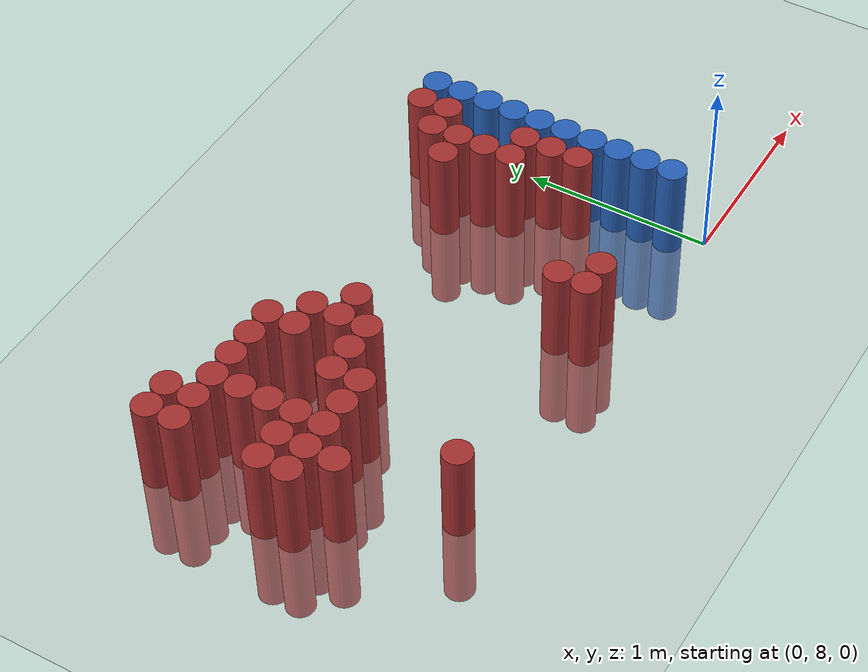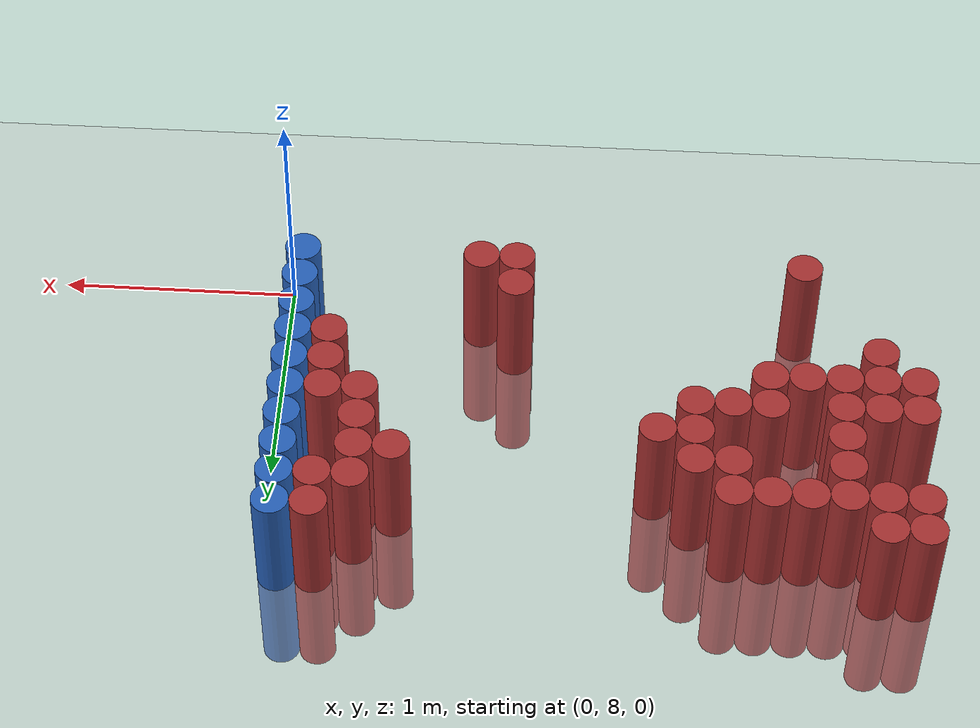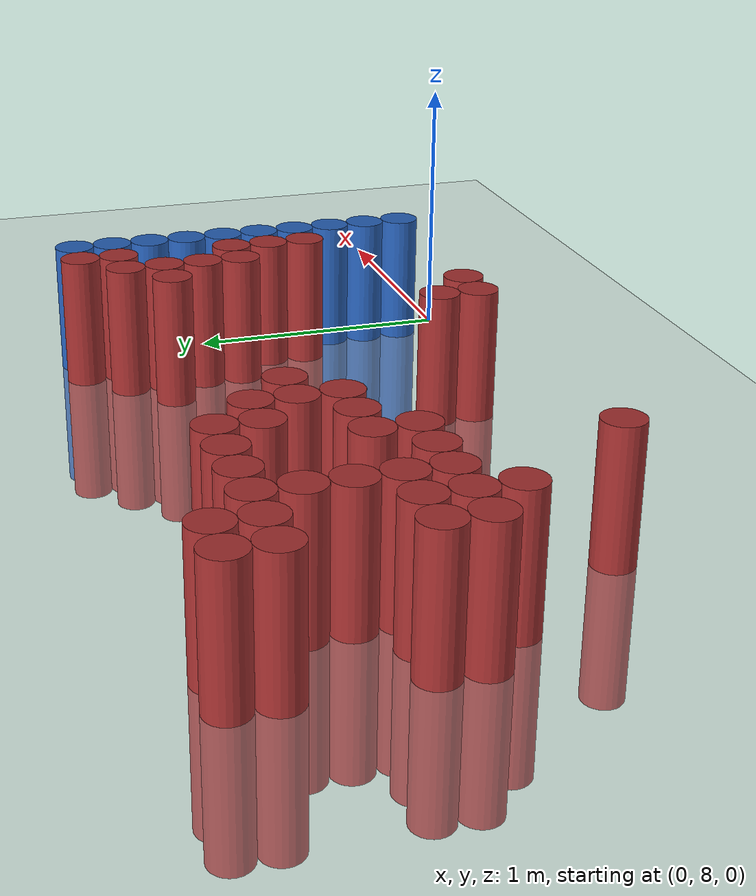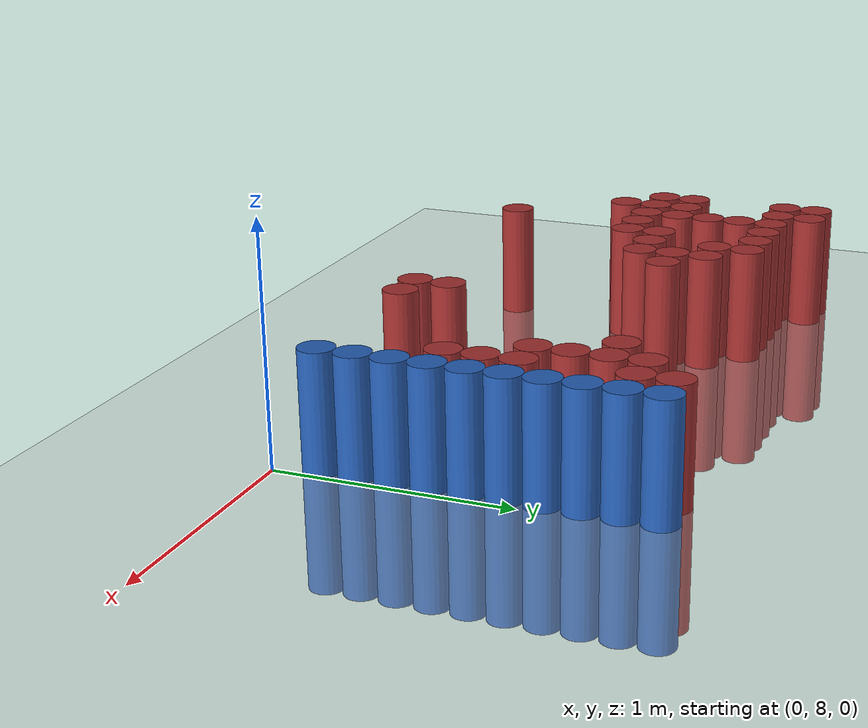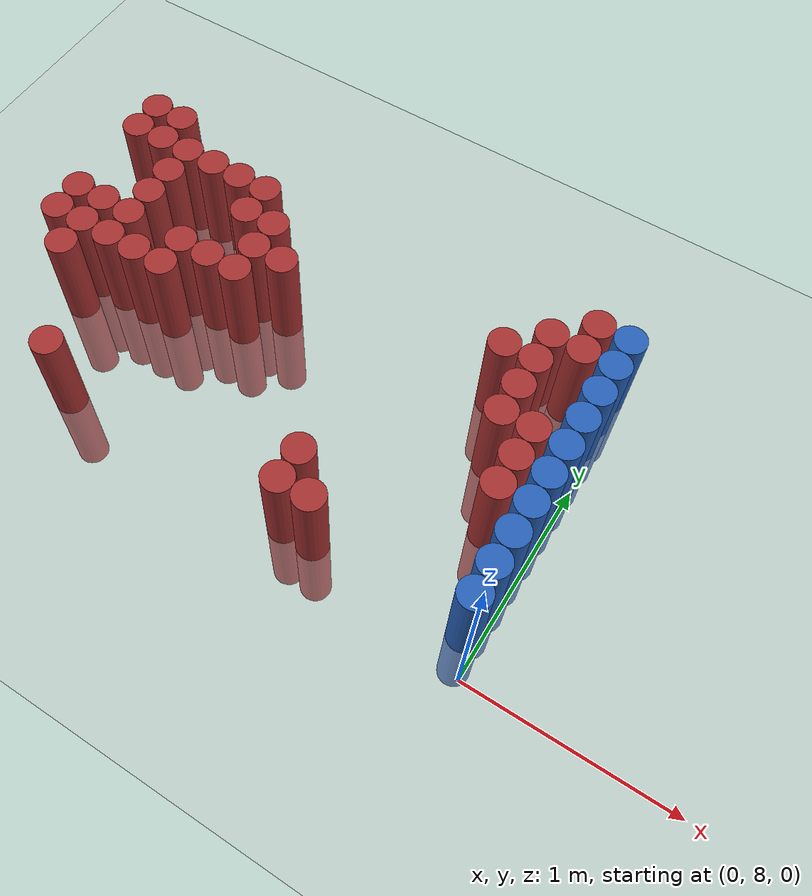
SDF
<sdf version="1.6">
 <world name="default">
  <model name="ground_plane">
   <static>1</static>
   <link name="link">
    <collision name="collision">
     <geometry><plane><normal>0 0 1</normal><size>100 100</size></plane></geometry>
     <surface><friction><ode><mu>100</mu><mu2>50</mu2></ode></friction></surface>
    </collision>
    <visual name="visual">
     <cast_shadows>0</cast_shadows>
     <geometry><plane><normal>0 0 1</normal><size>100 100</size></plane></geometry>
     <material>
      <script><uri>file://media/materials/scripts/gazebo.material</uri><name>Gazebo/Grey</name></script>
     </material>
    </visual>
   </link>
  </model>
  <model name="unit_cylinder_161">
   <static>1</static>
   <pose>-2.625000 8.775000 0.000000 0.000000 0.000000 0.000000</pose>
   <link name="link">
    <inertial>
     <mass>1</mass>
     <inertia><ixx>0.145833</ixx><ixy>0</ixy><ixz>0</ixz><iyy>0.145833</iyy><iyz>0</iyz><izz>0.125</izz></inertia>
    </inertial>
    <collision name="collision">
     <geometry><cylinder><radius>0.075000</radius><length>1</length></cylinder></geometry>
    </collision>
    <visual name="visual">
     <geometry><cylinder><radius>0.075000</radius><length>1</length></cylinder></geometry>
     <material>
      <ambient>0.648000 0.192000 0.192000 1</ambient>
      <diffuse>0.648000 0.192000 0.192000 1</diffuse>
     </material>
     <material>
      <script><name>Gazebo/Grey</name><uri>file://media/materials/scripts/gazebo.material</uri></script>
     </material>
    </visual>
   </link>
  </model>
  <model name="unit_cylinder_162">
   <static>1</static>
   <pose>-2.625000 8.925000 0.000000 0.000000 0.000000 0.000000</pose>
   <link name="link">
    <inertial>
     <mass>1</mass>
     <inertia><ixx>0.145833</ixx><ixy>0</ixy><ixz>0</ixz><iyy>0.145833</iyy><iyz>0</iyz><izz>0.125</izz></inertia>
    </inertial>
    <collision name="collision">
     <geometry><cylinder><radius>0.075000</radius><length>1</length></cylinder></geometry>
    </collision>
    <visual name="visual">
     <geometry><cylinder><radius>0.075000</radius><length>1</length></cylinder></geometry>
     <material>
      <ambient>0.648000 0.192000 0.192000 1</ambient>
      <diffuse>0.648000 0.192000 0.192000 1</diffuse>
     </material>
     <material>
      <script><name>Gazebo/Grey</name><uri>file://media/materials/scripts/gazebo.material</uri></script>
     </material>
    </visual>
   </link>
  </model>
  <model name="unit_cylinder_163">
   <static>1</static>
   <pose>-2.625000 9.375000 0.000000 0.000000 0.000000 0.000000</pose>
   <link name="link">
    <inertial>
     <mass>1</mass>
     <inertia><ixx>0.145833</ixx><ixy>0</ixy><ixz>0</ixz><iyy>0.145833</iyy><iyz>0</iyz><izz>0.125</izz></inertia>
    </inertial>
    <collision name="collision">
     <geometry><cylinder><radius>0.075000</radius><length>1</length></cylinder></geometry>
    </collision>
    <visual name="visual">
     <geometry><cylinder><radius>0.075000</radius><length>1</length></cylinder></geometry>
     <material>
      <ambient>0.648000 0.192000 0.192000 1</ambient>
      <diffuse>0.648000 0.192000 0.192000 1</diffuse>
     </material>
     <material>
      <script><name>Gazebo/Grey</name><uri>file://media/materials/scripts/gazebo.material</uri></script>
     </material>
    </visual>
   </link>
  </model>
  <model name="unit_cylinder_164">
   <static>1</static>
   <pose>-2.625000 9.525000 0.000000 0.000000 0.000000 0.000000</pose>
   <link name="link">
    <inertial>
     <mass>1</mass>
     <inertia><ixx>0.145833</ixx><ixy>0</ixy><ixz>0</ixz><iyy>0.145833</iyy><iyz>0</iyz><izz>0.125</izz></inertia>
    </inertial>
    <collision name="collision">
     <geometry><cylinder><radius>0.075000</radius><length>1</length></cylinder></geometry>
    </collision>
    <visual name="visual">
     <geometry><cylinder><radius>0.075000</radius><length>1</length></cylinder></geometry>
     <material>
      <ambient>0.648000 0.192000 0.192000 1</ambient>
      <diffuse>0.648000 0.192000 0.192000 1</diffuse>
     </material>
     <material>
      <script><name>Gazebo/Grey</name><uri>file://media/materials/scripts/gazebo.material</uri></script>
     </material>
    </visual>
   </link>
  </model>
  <model name="unit_cylinder_170">
   <static>1</static>
   <pose>-2.475000 8.625000 0.000000 0.000000 0.000000 0.000000</pose>
   <link name="link">
    <inertial>
     <mass>1</mass>
     <inertia><ixx>0.145833</ixx><ixy>0</ixy><ixz>0</ixz><iyy>0.145833</iyy><iyz>0</iyz><izz>0.125</izz></inertia>
    </inertial>
    <collision name="collision">
     <geometry><cylinder><radius>0.075000</radius><length>1</length></cylinder></geometry>
    </collision>
    <visual name="visual">
     <geometry><cylinder><radius>0.075000</radius><length>1</length></cylinder></geometry>
     <material>
      <ambient>0.648000 0.192000 0.192000 1</ambient>
      <diffuse>0.648000 0.192000 0.192000 1</diffuse>
     </material>
     <material>
      <script><name>Gazebo/Grey</name><uri>file://media/materials/scripts/gazebo.material</uri></script>
     </material>
    </visual>
   </link>
  </model>
  <model name="unit_cylinder_171">
   <static>1</static>
   <pose>-2.475000 8.775000 0.000000 0.000000 0.000000 0.000000</pose>
   <link name="link">
    <inertial>
     <mass>1</mass>
     <inertia><ixx>0.145833</ixx><ixy>0</ixy><ixz>0</ixz><iyy>0.145833</iyy><iyz>0</iyz><izz>0.125</izz></inertia>
    </inertial>
    <collision name="collision">
     <geometry><cylinder><radius>0.075000</radius><length>1</length></cylinder></geometry>
    </collision>
    <visual name="visual">
     <geometry><cylinder><radius>0.075000</radius><length>1</length></cylinder></geometry>
     <material>
      <ambient>0.648000 0.192000 0.192000 1</ambient>
      <diffuse>0.648000 0.192000 0.192000 1</diffuse>
     </material>
     <material>
      <script><name>Gazebo/Grey</name><uri>file://media/materials/scripts/gazebo.material</uri></script>
     </material>
    </visual>
   </link>
  </model>
  <model name="unit_cylinder_172">
   <static>1</static>
   <pose>-2.475000 8.925000 0.000000 0.000000 0.000000 0.000000</pose>
   <link name="link">
    <inertial>
     <mass>1</mass>
     <inertia><ixx>0.145833</ixx><ixy>0</ixy><ixz>0</ixz><iyy>0.145833</iyy><iyz>0</iyz><izz>0.125</izz></inertia>
    </inertial>
    <collision name="collision">
     <geometry><cylinder><radius>0.075000</radius><length>1</length></cylinder></geometry>
    </collision>
    <visual name="visual">
     <geometry><cylinder><radius>0.075000</radius><length>1</length></cylinder></geometry>
     <material>
      <ambient>0.648000 0.192000 0.192000 1</ambient>
      <diffuse>0.648000 0.192000 0.192000 1</diffuse>
     </material>
     <material>
      <script><name>Gazebo/Grey</name><uri>file://media/materials/scripts/gazebo.material</uri></script>
     </material>
    </visual>
   </link>
  </model>
  <model name="unit_cylinder_173">
   <static>1</static>
   <pose>-2.475000 9.375000 0.000000 0.000000 0.000000 0.000000</pose>
   <link name="link">
    <inertial>
     <mass>1</mass>
     <inertia><ixx>0.145833</ixx><ixy>0</ixy><ixz>0</ixz><iyy>0.145833</iyy><iyz>0</iyz><izz>0.125</izz></inertia>
    </inertial>
    <collision name="collision">
     <geometry><cylinder><radius>0.075000</radius><length>1</length></cylinder></geometry>
    </collision>
    <visual name="visual">
     <geometry><cylinder><radius>0.075000</radius><length>1</length></cylinder></geometry>
     <material>
      <ambient>0.648000 0.192000 0.192000 1</ambient>
      <diffuse>0.648000 0.192000 0.192000 1</diffuse>
     </material>
     <material>
      <script><name>Gazebo/Grey</name><uri>file://media/materials/scripts/gazebo.material</uri></script>
     </material>
    </visual>
   </link>
  </model>
  <model name="unit_cylinder_174">
   <static>1</static>
   <pose>-2.475000 9.525000 0.000000 0.000000 0.000000 0.000000</pose>
   <link name="link">
    <inertial>
     <mass>1</mass>
     <inertia><ixx>0.145833</ixx><ixy>0</ixy><ixz>0</ixz><iyy>0.145833</iyy><iyz>0</iyz><izz>0.125</izz></inertia>
    </inertial>
    <collision name="collision">
     <geometry><cylinder><radius>0.075000</radius><length>1</length></cylinder></geometry>
    </collision>
    <visual name="visual">
     <geometry><cylinder><radius>0.075000</radius><length>1</length></cylinder></geometry>
     <material>
      <ambient>0.648000 0.192000 0.192000 1</ambient>
      <diffuse>0.648000 0.192000 0.192000 1</diffuse>
     </material>
     <material>
      <script><name>Gazebo/Grey</name><uri>file://media/materials/scripts/gazebo.material</uri></script>
     </material>
    </visual>
   </link>
  </model>
  <model name="unit_cylinder_185">
   <static>1</static>
   <pose>-2.325000 8.775000 0.000000 0.000000 0.000000 0.000000</pose>
   <link name="link">
    <inertial>
     <mass>1</mass>
     <inertia><ixx>0.145833</ixx><ixy>0</ixy><ixz>0</ixz><iyy>0.145833</iyy><iyz>0</iyz><izz>0.125</izz></inertia>
    </inertial>
    <collision name="collision">
     <geometry><cylinder><radius>0.075000</radius><length>1</length></cylinder></geometry>
    </collision>
    <visual name="visual">
     <geometry><cylinder><radius>0.075000</radius><length>1</length></cylinder></geometry>
     <material>
      <ambient>0.648000 0.192000 0.192000 1</ambient>
      <diffuse>0.648000 0.192000 0.192000 1</diffuse>
     </material>
     <material>
      <script><name>Gazebo/Grey</name><uri>file://media/materials/scripts/gazebo.material</uri></script>
     </material>
    </visual>
   </link>
  </model>
  <model name="unit_cylinder_186">
   <static>1</static>
   <pose>-2.325000 8.925000 0.000000 0.000000 0.000000 0.000000</pose>
   <link name="link">
    <inertial>
     <mass>1</mass>
     <inertia><ixx>0.145833</ixx><ixy>0</ixy><ixz>0</ixz><iyy>0.145833</iyy><iyz>0</iyz><izz>0.125</izz></inertia>
    </inertial>
    <collision name="collision">
     <geometry><cylinder><radius>0.075000</radius><length>1</length></cylinder></geometry>
    </collision>
    <visual name="visual">
     <geometry><cylinder><radius>0.075000</radius><length>1</length></cylinder></geometry>
     <material>
      <ambient>0.648000 0.192000 0.192000 1</ambient>
      <diffuse>0.648000 0.192000 0.192000 1</diffuse>
     </material>
     <material>
      <script><name>Gazebo/Grey</name><uri>file://media/materials/scripts/gazebo.material</uri></script>
     </material>
    </visual>
   </link>
  </model>
  <model name="unit_cylinder_187">
   <static>1</static>
   <pose>-2.325000 9.075000 0.000000 0.000000 0.000000 0.000000</pose>
   <link name="link">
    <inertial>
     <mass>1</mass>
     <inertia><ixx>0.145833</ixx><ixy>0</ixy><ixz>0</ixz><iyy>0.145833</iyy><iyz>0</iyz><izz>0.125</izz></inertia>
    </inertial>
    <collision name="collision">
     <geometry><cylinder><radius>0.075000</radius><length>1</length></cylinder></geometry>
    </collision>
    <visual name="visual">
     <geometry><cylinder><radius>0.075000</radius><length>1</length></cylinder></geometry>
     <material>
      <ambient>0.648000 0.192000 0.192000 1</ambient>
      <diffuse>0.648000 0.192000 0.192000 1</diffuse>
     </material>
     <material>
      <script><name>Gazebo/Grey</name><uri>file://media/materials/scripts/gazebo.material</uri></script>
     </material>
    </visual>
   </link>
  </model>
  <model name="unit_cylinder_188">
   <static>1</static>
   <pose>-2.325000 9.225000 0.000000 0.000000 0.000000 0.000000</pose>
   <link name="link">
    <inertial>
     <mass>1</mass>
     <inertia><ixx>0.145833</ixx><ixy>0</ixy><ixz>0</ixz><iyy>0.145833</iyy><iyz>0</iyz><izz>0.125</izz></inertia>
    </inertial>
    <collision name="collision">
     <geometry><cylinder><radius>0.075000</radius><length>1</length></cylinder></geometry>
    </collision>
    <visual name="visual">
     <geometry><cylinder><radius>0.075000</radius><length>1</length></cylinder></geometry>
     <material>
      <ambient>0.648000 0.192000 0.192000 1</ambient>
      <diffuse>0.648000 0.192000 0.192000 1</diffuse>
     </material>
     <material>
      <script><name>Gazebo/Grey</name><uri>file://media/materials/scripts/gazebo.material</uri></script>
     </material>
    </visual>
   </link>
  </model>
  <model name="unit_cylinder_189">
   <static>1</static>
   <pose>-2.325000 9.375000 0.000000 0.000000 0.000000 0.000000</pose>
   <link name="link">
    <inertial>
     <mass>1</mass>
     <inertia><ixx>0.145833</ixx><ixy>0</ixy><ixz>0</ixz><iyy>0.145833</iyy><iyz>0</iyz><izz>0.125</izz></inertia>
    </inertial>
    <collision name="collision">
     <geometry><cylinder><radius>0.075000</radius><length>1</length></cylinder></geometry>
    </collision>
    <visual name="visual">
     <geometry><cylinder><radius>0.075000</radius><length>1</length></cylinder></geometry>
     <material>
      <ambient>0.648000 0.192000 0.192000 1</ambient>
      <diffuse>0.648000 0.192000 0.192000 1</diffuse>
     </material>
     <material>
      <script><name>Gazebo/Grey</name><uri>file://media/materials/scripts/gazebo.material</uri></script>
     </material>
    </visual>
   </link>
  </model>
  <model name="unit_cylinder_200">
   <static>1</static>
   <pose>-2.175000 8.175000 0.000000 0.000000 0.000000 0.000000</pose>
   <link name="link">
    <inertial>
     <mass>1</mass>
     <inertia><ixx>0.145833</ixx><ixy>0</ixy><ixz>0</ixz><iyy>0.145833</iyy><iyz>0</iyz><izz>0.125</izz></inertia>
    </inertial>
    <collision name="collision">
     <geometry><cylinder><radius>0.075000</radius><length>1</length></cylinder></geometry>
    </collision>
    <visual name="visual">
     <geometry><cylinder><radius>0.075000</radius><length>1</length></cylinder></geometry>
     <material>
      <ambient>0.648000 0.192000 0.192000 1</ambient>
      <diffuse>0.648000 0.192000 0.192000 1</diffuse>
     </material>
     <material>
      <script><name>Gazebo/Grey</name><uri>file://media/materials/scripts/gazebo.material</uri></script>
     </material>
    </visual>
   </link>
  </model>
  <model name="unit_cylinder_201">
   <static>1</static>
   <pose>-2.175000 8.775000 0.000000 0.000000 0.000000 0.000000</pose>
   <link name="link">
    <inertial>
     <mass>1</mass>
     <inertia><ixx>0.145833</ixx><ixy>0</ixy><ixz>0</ixz><iyy>0.145833</iyy><iyz>0</iyz><izz>0.125</izz></inertia>
    </inertial>
    <collision name="collision">
     <geometry><cylinder><radius>0.075000</radius><length>1</length></cylinder></geometry>
    </collision>
    <visual name="visual">
     <geometry><cylinder><radius>0.075000</radius><length>1</length></cylinder></geometry>
     <material>
      <ambient>0.648000 0.192000 0.192000 1</ambient>
      <diffuse>0.648000 0.192000 0.192000 1</diffuse>
     </material>
     <material>
      <script><name>Gazebo/Grey</name><uri>file://media/materials/scripts/gazebo.material</uri></script>
     </material>
    </visual>
   </link>
  </model>
  <model name="unit_cylinder_202">
   <static>1</static>
   <pose>-2.175000 9.375000 0.000000 0.000000 0.000000 0.000000</pose>
   <link name="link">
    <inertial>
     <mass>1</mass>
     <inertia><ixx>0.145833</ixx><ixy>0</ixy><ixz>0</ixz><iyy>0.145833</iyy><iyz>0</iyz><izz>0.125</izz></inertia>
    </inertial>
    <collision name="collision">
     <geometry><cylinder><radius>0.075000</radius><length>1</length></cylinder></geometry>
    </collision>
    <visual name="visual">
     <geometry><cylinder><radius>0.075000</radius><length>1</length></cylinder></geometry>
     <material>
      <ambient>0.648000 0.192000 0.192000 1</ambient>
      <diffuse>0.648000 0.192000 0.192000 1</diffuse>
     </material>
     <material>
      <script><name>Gazebo/Grey</name><uri>file://media/materials/scripts/gazebo.material</uri></script>
     </material>
    </visual>
   </link>
  </model>
  <model name="unit_cylinder_211">
   <static>1</static>
   <pose>-2.025000 8.775000 0.000000 0.000000 0.000000 0.000000</pose>
   <link name="link">
    <inertial>
     <mass>1</mass>
     <inertia><ixx>0.145833</ixx><ixy>0</ixy><ixz>0</ixz><iyy>0.145833</iyy><iyz>0</iyz><izz>0.125</izz></inertia>
    </inertial>
    <collision name="collision">
     <geometry><cylinder><radius>0.075000</radius><length>1</length></cylinder></geometry>
    </collision>
    <visual name="visual">
     <geometry><cylinder><radius>0.075000</radius><length>1</length></cylinder></geometry>
     <material>
      <ambient>0.648000 0.192000 0.192000 1</ambient>
      <diffuse>0.648000 0.192000 0.192000 1</diffuse>
     </material>
     <material>
      <script><name>Gazebo/Grey</name><uri>file://media/materials/scripts/gazebo.material</uri></script>
     </material>
    </visual>
   </link>
  </model>
  <model name="unit_cylinder_212">
   <static>1</static>
   <pose>-2.025000 8.925000 0.000000 0.000000 0.000000 0.000000</pose>
   <link name="link">
    <inertial>
     <mass>1</mass>
     <inertia><ixx>0.145833</ixx><ixy>0</ixy><ixz>0</ixz><iyy>0.145833</iyy><iyz>0</iyz><izz>0.125</izz></inertia>
    </inertial>
    <collision name="collision">
     <geometry><cylinder><radius>0.075000</radius><length>1</length></cylinder></geometry>
    </collision>
    <visual name="visual">
     <geometry><cylinder><radius>0.075000</radius><length>1</length></cylinder></geometry>
     <material>
      <ambient>0.648000 0.192000 0.192000 1</ambient>
      <diffuse>0.648000 0.192000 0.192000 1</diffuse>
     </material>
     <material>
      <script><name>Gazebo/Grey</name><uri>file://media/materials/scripts/gazebo.material</uri></script>
     </material>
    </visual>
   </link>
  </model>
  <model name="unit_cylinder_213">
   <static>1</static>
   <pose>-2.025000 9.375000 0.000000 0.000000 0.000000 0.000000</pose>
   <link name="link">
    <inertial>
     <mass>1</mass>
     <inertia><ixx>0.145833</ixx><ixy>0</ixy><ixz>0</ixz><iyy>0.145833</iyy><iyz>0</iyz><izz>0.125</izz></inertia>
    </inertial>
    <collision name="collision">
     <geometry><cylinder><radius>0.075000</radius><length>1</length></cylinder></geometry>
    </collision>
    <visual name="visual">
     <geometry><cylinder><radius>0.075000</radius><length>1</length></cylinder></geometry>
     <material>
      <ambient>0.648000 0.192000 0.192000 1</ambient>
      <diffuse>0.648000 0.192000 0.192000 1</diffuse>
     </material>
     <material>
      <script><name>Gazebo/Grey</name><uri>file://media/materials/scripts/gazebo.material</uri></script>
     </material>
    </visual>
   </link>
  </model>
  <model name="unit_cylinder_221">
   <static>1</static>
   <pose>-1.875000 8.925000 0.000000 0.000000 0.000000 0.000000</pose>
   <link name="link">
    <inertial>
     <mass>1</mass>
     <inertia><ixx>0.145833</ixx><ixy>0</ixy><ixz>0</ixz><iyy>0.145833</iyy><iyz>0</iyz><izz>0.125</izz></inertia>
    </inertial>
    <collision name="collision">
     <geometry><cylinder><radius>0.075000</radius><length>1</length></cylinder></geometry>
    </collision>
    <visual name="visual">
     <geometry><cylinder><radius>0.075000</radius><length>1</length></cylinder></geometry>
     <material>
      <ambient>0.648000 0.192000 0.192000 1</ambient>
      <diffuse>0.648000 0.192000 0.192000 1</diffuse>
     </material>
     <material>
      <script><name>Gazebo/Grey</name><uri>file://media/materials/scripts/gazebo.material</uri></script>
     </material>
    </visual>
   </link>
  </model>
  <model name="unit_cylinder_222">
   <static>1</static>
   <pose>-1.875000 9.225000 0.000000 0.000000 0.000000 0.000000</pose>
   <link name="link">
    <inertial>
     <mass>1</mass>
     <inertia><ixx>0.145833</ixx><ixy>0</ixy><ixz>0</ixz><iyy>0.145833</iyy><iyz>0</iyz><izz>0.125</izz></inertia>
    </inertial>
    <collision name="collision">
     <geometry><cylinder><radius>0.075000</radius><length>1</length></cylinder></geometry>
    </collision>
    <visual name="visual">
     <geometry><cylinder><radius>0.075000</radius><length>1</length></cylinder></geometry>
     <material>
      <ambient>0.648000 0.192000 0.192000 1</ambient>
      <diffuse>0.648000 0.192000 0.192000 1</diffuse>
     </material>
     <material>
      <script><name>Gazebo/Grey</name><uri>file://media/materials/scripts/gazebo.material</uri></script>
     </material>
    </visual>
   </link>
  </model>
  <model name="unit_cylinder_223">
   <static>1</static>
   <pose>-1.875000 9.375000 0.000000 0.000000 0.000000 0.000000</pose>
   <link name="link">
    <inertial>
     <mass>1</mass>
     <inertia><ixx>0.145833</ixx><ixy>0</ixy><ixz>0</ixz><iyy>0.145833</iyy><iyz>0</iyz><izz>0.125</izz></inertia>
    </inertial>
    <collision name="collision">
     <geometry><cylinder><radius>0.075000</radius><length>1</length></cylinder></geometry>
    </collision>
    <visual name="visual">
     <geometry><cylinder><radius>0.075000</radius><length>1</length></cylinder></geometry>
     <material>
      <ambient>0.648000 0.192000 0.192000 1</ambient>
      <diffuse>0.648000 0.192000 0.192000 1</diffuse>
     </material>
     <material>
      <script><name>Gazebo/Grey</name><uri>file://media/materials/scripts/gazebo.material</uri></script>
     </material>
    </visual>
   </link>
  </model>
  <model name="unit_cylinder_226">
   <static>1</static>
   <pose>-1.725000 8.925000 0.000000 0.000000 0.000000 0.000000</pose>
   <link name="link">
    <inertial>
     <mass>1</mass>
     <inertia><ixx>0.145833</ixx><ixy>0</ixy><ixz>0</ixz><iyy>0.145833</iyy><iyz>0</iyz><izz>0.125</izz></inertia>
    </inertial>
    <collision name="collision">
     <geometry><cylinder><radius>0.075000</radius><length>1</length></cylinder></geometry>
    </collision>
    <visual name="visual">
     <geometry><cylinder><radius>0.075000</radius><length>1</length></cylinder></geometry>
     <material>
      <ambient>0.648000 0.192000 0.192000 1</ambient>
      <diffuse>0.648000 0.192000 0.192000 1</diffuse>
     </material>
     <material>
      <script><name>Gazebo/Grey</name><uri>file://media/materials/scripts/gazebo.material</uri></script>
     </material>
    </visual>
   </link>
  </model>
  <model name="unit_cylinder_227">
   <static>1</static>
   <pose>-1.725000 9.075000 0.000000 0.000000 0.000000 0.000000</pose>
   <link name="link">
    <inertial>
     <mass>1</mass>
     <inertia><ixx>0.145833</ixx><ixy>0</ixy><ixz>0</ixz><iyy>0.145833</iyy><iyz>0</iyz><izz>0.125</izz></inertia>
    </inertial>
    <collision name="collision">
     <geometry><cylinder><radius>0.075000</radius><length>1</length></cylinder></geometry>
    </collision>
    <visual name="visual">
     <geometry><cylinder><radius>0.075000</radius><length>1</length></cylinder></geometry>
     <material>
      <ambient>0.648000 0.192000 0.192000 1</ambient>
      <diffuse>0.648000 0.192000 0.192000 1</diffuse>
     </material>
     <material>
      <script><name>Gazebo/Grey</name><uri>file://media/materials/scripts/gazebo.material</uri></script>
     </material>
    </visual>
   </link>
  </model>
  <model name="unit_cylinder_228">
   <static>1</static>
   <pose>-1.725000 9.225000 0.000000 0.000000 0.000000 0.000000</pose>
   <link name="link">
    <inertial>
     <mass>1</mass>
     <inertia><ixx>0.145833</ixx><ixy>0</ixy><ixz>0</ixz><iyy>0.145833</iyy><iyz>0</iyz><izz>0.125</izz></inertia>
    </inertial>
    <collision name="collision">
     <geometry><cylinder><radius>0.075000</radius><length>1</length></cylinder></geometry>
    </collision>
    <visual name="visual">
     <geometry><cylinder><radius>0.075000</radius><length>1</length></cylinder></geometry>
     <material>
      <ambient>0.648000 0.192000 0.192000 1</ambient>
      <diffuse>0.648000 0.192000 0.192000 1</diffuse>
     </material>
     <material>
      <script><name>Gazebo/Grey</name><uri>file://media/materials/scripts/gazebo.material</uri></script>
     </material>
    </visual>
   </link>
  </model>
  <model name="unit_cylinder_230">
   <static>1</static>
   <pose>-1.575000 9.075000 0.000000 0.000000 0.000000 0.000000</pose>
   <link name="link">
    <inertial>
     <mass>1</mass>
     <inertia><ixx>0.145833</ixx><ixy>0</ixy><ixz>0</ixz><iyy>0.145833</iyy><iyz>0</iyz><izz>0.125</izz></inertia>
    </inertial>
    <collision name="collision">
     <geometry><cylinder><radius>0.075000</radius><length>1</length></cylinder></geometry>
    </collision>
    <visual name="visual">
     <geometry><cylinder><radius>0.075000</radius><length>1</length></cylinder></geometry>
     <material>
      <ambient>0.648000 0.192000 0.192000 1</ambient>
      <diffuse>0.648000 0.192000 0.192000 1</diffuse>
     </material>
     <material>
      <script><name>Gazebo/Grey</name><uri>file://media/materials/scripts/gazebo.material</uri></script>
     </material>
    </visual>
   </link>
  </model>
  <model name="unit_cylinder_243">
   <static>1</static>
   <pose>-0.975000 8.175000 0.000000 0.000000 0.000000 0.000000</pose>
   <link name="link">
    <inertial>
     <mass>1</mass>
     <inertia><ixx>0.145833</ixx><ixy>0</ixy><ixz>0</ixz><iyy>0.145833</iyy><iyz>0</iyz><izz>0.125</izz></inertia>
    </inertial>
    <collision name="collision">
     <geometry><cylinder><radius>0.075000</radius><length>1</length></cylinder></geometry>
    </collision>
    <visual name="visual">
     <geometry><cylinder><radius>0.075000</radius><length>1</length></cylinder></geometry>
     <material>
      <ambient>0.648000 0.192000 0.192000 1</ambient>
      <diffuse>0.648000 0.192000 0.192000 1</diffuse>
     </material>
     <material>
      <script><name>Gazebo/Grey</name><uri>file://media/materials/scripts/gazebo.material</uri></script>
     </material>
    </visual>
   </link>
  </model>
  <model name="unit_cylinder_244">
   <static>1</static>
   <pose>-0.975000 8.325000 0.000000 0.000000 0.000000 0.000000</pose>
   <link name="link">
    <inertial>
     <mass>1</mass>
     <inertia><ixx>0.145833</ixx><ixy>0</ixy><ixz>0</ixz><iyy>0.145833</iyy><iyz>0</iyz><izz>0.125</izz></inertia>
    </inertial>
    <collision name="collision">
     <geometry><cylinder><radius>0.075000</radius><length>1</length></cylinder></geometry>
    </collision>
    <visual name="visual">
     <geometry><cylinder><radius>0.075000</radius><length>1</length></cylinder></geometry>
     <material>
      <ambient>0.648000 0.192000 0.192000 1</ambient>
      <diffuse>0.648000 0.192000 0.192000 1</diffuse>
     </material>
     <material>
      <script><name>Gazebo/Grey</name><uri>file://media/materials/scripts/gazebo.material</uri></script>
     </material>
    </visual>
   </link>
  </model>
  <model name="unit_cylinder_246">
   <static>1</static>
   <pose>-0.825000 8.175000 0.000000 0.000000 0.000000 0.000000</pose>
   <link name="link">
    <inertial>
     <mass>1</mass>
     <inertia><ixx>0.145833</ixx><ixy>0</ixy><ixz>0</ixz><iyy>0.145833</iyy><iyz>0</iyz><izz>0.125</izz></inertia>
    </inertial>
    <collision name="collision">
     <geometry><cylinder><radius>0.075000</radius><length>1</length></cylinder></geometry>
    </collision>
    <visual name="visual">
     <geometry><cylinder><radius>0.075000</radius><length>1</length></cylinder></geometry>
     <material>
      <ambient>0.648000 0.192000 0.192000 1</ambient>
      <diffuse>0.648000 0.192000 0.192000 1</diffuse>
     </material>
     <material>
      <script><name>Gazebo/Grey</name><uri>file://media/materials/scripts/gazebo.material</uri></script>
     </material>
    </visual>
   </link>
  </model>
  <model name="unit_cylinder_249">
   <static>1</static>
   <pose>-0.525000 9.225000 0.000000 0.000000 0.000000 0.000000</pose>
   <link name="link">
    <inertial>
     <mass>1</mass>
     <inertia><ixx>0.145833</ixx><ixy>0</ixy><ixz>0</ixz><iyy>0.145833</iyy><iyz>0</iyz><izz>0.125</izz></inertia>
    </inertial>
    <collision name="collision">
     <geometry><cylinder><radius>0.075000</radius><length>1</length></cylinder></geometry>
    </collision>
    <visual name="visual">
     <geometry><cylinder><radius>0.075000</radius><length>1</length></cylinder></geometry>
     <material>
      <ambient>0.648000 0.192000 0.192000 1</ambient>
      <diffuse>0.648000 0.192000 0.192000 1</diffuse>
     </material>
     <material>
      <script><name>Gazebo/Grey</name><uri>file://media/materials/scripts/gazebo.material</uri></script>
     </material>
    </visual>
   </link>
  </model>
  <model name="unit_cylinder_252">
   <static>1</static>
   <pose>-0.375000 8.925000 0.000000 0.000000 0.000000 0.000000</pose>
   <link name="link">
    <inertial>
     <mass>1</mass>
     <inertia><ixx>0.145833</ixx><ixy>0</ixy><ixz>0</ixz><iyy>0.145833</iyy><iyz>0</iyz><izz>0.125</izz></inertia>
    </inertial>
    <collision name="collision">
     <geometry><cylinder><radius>0.075000</radius><length>1</length></cylinder></geometry>
    </collision>
    <visual name="visual">
     <geometry><cylinder><radius>0.075000</radius><length>1</length></cylinder></geometry>
     <material>
      <ambient>0.648000 0.192000 0.192000 1</ambient>
      <diffuse>0.648000 0.192000 0.192000 1</diffuse>
     </material>
     <material>
      <script><name>Gazebo/Grey</name><uri>file://media/materials/scripts/gazebo.material</uri></script>
     </material>
    </visual>
   </link>
  </model>
  <model name="unit_cylinder_253">
   <static>1</static>
   <pose>-0.375000 9.075000 0.000000 0.000000 0.000000 0.000000</pose>
   <link name="link">
    <inertial>
     <mass>1</mass>
     <inertia><ixx>0.145833</ixx><ixy>0</ixy><ixz>0</ixz><iyy>0.145833</iyy><iyz>0</iyz><izz>0.125</izz></inertia>
    </inertial>
    <collision name="collision">
     <geometry><cylinder><radius>0.075000</radius><length>1</length></cylinder></geometry>
    </collision>
    <visual name="visual">
     <geometry><cylinder><radius>0.075000</radius><length>1</length></cylinder></geometry>
     <material>
      <ambient>0.648000 0.192000 0.192000 1</ambient>
      <diffuse>0.648000 0.192000 0.192000 1</diffuse>
     </material>
     <material>
      <script><name>Gazebo/Grey</name><uri>file://media/materials/scripts/gazebo.material</uri></script>
     </material>
    </visual>
   </link>
  </model>
  <model name="unit_cylinder_254">
   <static>1</static>
   <pose>-0.375000 9.225000 0.000000 0.000000 0.000000 0.000000</pose>
   <link name="link">
    <inertial>
     <mass>1</mass>
     <inertia><ixx>0.145833</ixx><ixy>0</ixy><ixz>0</ixz><iyy>0.145833</iyy><iyz>0</iyz><izz>0.125</izz></inertia>
    </inertial>
    <collision name="collision">
     <geometry><cylinder><radius>0.075000</radius><length>1</length></cylinder></geometry>
    </collision>
    <visual name="visual">
     <geometry><cylinder><radius>0.075000</radius><length>1</length></cylinder></geometry>
     <material>
      <ambient>0.648000 0.192000 0.192000 1</ambient>
      <diffuse>0.648000 0.192000 0.192000 1</diffuse>
     </material>
     <material>
      <script><name>Gazebo/Grey</name><uri>file://media/materials/scripts/gazebo.material</uri></script>
     </material>
    </visual>
   </link>
  </model>
  <model name="unit_cylinder_255">
   <static>1</static>
   <pose>-0.375000 9.375000 0.000000 0.000000 0.000000 0.000000</pose>
   <link name="link">
    <inertial>
     <mass>1</mass>
     <inertia><ixx>0.145833</ixx><ixy>0</ixy><ixz>0</ixz><iyy>0.145833</iyy><iyz>0</iyz><izz>0.125</izz></inertia>
    </inertial>
    <collision name="collision">
     <geometry><cylinder><radius>0.075000</radius><length>1</length></cylinder></geometry>
    </collision>
    <visual name="visual">
     <geometry><cylinder><radius>0.075000</radius><length>1</length></cylinder></geometry>
     <material>
      <ambient>0.648000 0.192000 0.192000 1</ambient>
      <diffuse>0.648000 0.192000 0.192000 1</diffuse>
     </material>
     <material>
      <script><name>Gazebo/Grey</name><uri>file://media/materials/scripts/gazebo.material</uri></script>
     </material>
    </visual>
   </link>
  </model>
  <model name="unit_cylinder_266">
   <static>1</static>
   <pose>-0.225000 8.625000 0.000000 0.000000 0.000000 0.000000</pose>
   <link name="link">
    <inertial>
     <mass>1</mass>
     <inertia><ixx>0.145833</ixx><ixy>0</ixy><ixz>0</ixz><iyy>0.145833</iyy><iyz>0</iyz><izz>0.125</izz></inertia>
    </inertial>
    <collision name="collision">
     <geometry><cylinder><radius>0.075000</radius><length>1</length></cylinder></geometry>
    </collision>
    <visual name="visual">
     <geometry><cylinder><radius>0.075000</radius><length>1</length></cylinder></geometry>
     <material>
      <ambient>0.648000 0.192000 0.192000 1</ambient>
      <diffuse>0.648000 0.192000 0.192000 1</diffuse>
     </material>
     <material>
      <script><name>Gazebo/Grey</name><uri>file://media/materials/scripts/gazebo.material</uri></script>
     </material>
    </visual>
   </link>
  </model>
  <model name="unit_cylinder_267">
   <static>1</static>
   <pose>-0.225000 8.775000 0.000000 0.000000 0.000000 0.000000</pose>
   <link name="link">
    <inertial>
     <mass>1</mass>
     <inertia><ixx>0.145833</ixx><ixy>0</ixy><ixz>0</ixz><iyy>0.145833</iyy><iyz>0</iyz><izz>0.125</izz></inertia>
    </inertial>
    <collision name="collision">
     <geometry><cylinder><radius>0.075000</radius><length>1</length></cylinder></geometry>
    </collision>
    <visual name="visual">
     <geometry><cylinder><radius>0.075000</radius><length>1</length></cylinder></geometry>
     <material>
      <ambient>0.648000 0.192000 0.192000 1</ambient>
      <diffuse>0.648000 0.192000 0.192000 1</diffuse>
     </material>
     <material>
      <script><name>Gazebo/Grey</name><uri>file://media/materials/scripts/gazebo.material</uri></script>
     </material>
    </visual>
   </link>
  </model>
  <model name="unit_cylinder_268">
   <static>1</static>
   <pose>-0.225000 8.925000 0.000000 0.000000 0.000000 0.000000</pose>
   <link name="link">
    <inertial>
     <mass>1</mass>
     <inertia><ixx>0.145833</ixx><ixy>0</ixy><ixz>0</ixz><iyy>0.145833</iyy><iyz>0</iyz><izz>0.125</izz></inertia>
    </inertial>
    <collision name="collision">
     <geometry><cylinder><radius>0.075000</radius><length>1</length></cylinder></geometry>
    </collision>
    <visual name="visual">
     <geometry><cylinder><radius>0.075000</radius><length>1</length></cylinder></geometry>
     <material>
      <ambient>0.648000 0.192000 0.192000 1</ambient>
      <diffuse>0.648000 0.192000 0.192000 1</diffuse>
     </material>
     <material>
      <script><name>Gazebo/Grey</name><uri>file://media/materials/scripts/gazebo.material</uri></script>
     </material>
    </visual>
   </link>
  </model>
  <model name="unit_cylinder_269">
   <static>1</static>
   <pose>-0.225000 9.375000 0.000000 0.000000 0.000000 0.000000</pose>
   <link name="link">
    <inertial>
     <mass>1</mass>
     <inertia><ixx>0.145833</ixx><ixy>0</ixy><ixz>0</ixz><iyy>0.145833</iyy><iyz>0</iyz><izz>0.125</izz></inertia>
    </inertial>
    <collision name="collision">
     <geometry><cylinder><radius>0.075000</radius><length>1</length></cylinder></geometry>
    </collision>
    <visual name="visual">
     <geometry><cylinder><radius>0.075000</radius><length>1</length></cylinder></geometry>
     <material>
      <ambient>0.648000 0.192000 0.192000 1</ambient>
      <diffuse>0.648000 0.192000 0.192000 1</diffuse>
     </material>
     <material>
      <script><name>Gazebo/Grey</name><uri>file://media/materials/scripts/gazebo.material</uri></script>
     </material>
    </visual>
   </link>
  </model>
  <model name="unit_cylinder_270">
   <static>1</static>
   <pose>-0.225000 9.525000 0.000000 0.000000 0.000000 0.000000</pose>
   <link name="link">
    <inertial>
     <mass>1</mass>
     <inertia><ixx>0.145833</ixx><ixy>0</ixy><ixz>0</ixz><iyy>0.145833</iyy><iyz>0</iyz><izz>0.125</izz></inertia>
    </inertial>
    <collision name="collision">
     <geometry><cylinder><radius>0.075000</radius><length>1</length></cylinder></geometry>
    </collision>
    <visual name="visual">
     <geometry><cylinder><radius>0.075000</radius><length>1</length></cylinder></geometry>
     <material>
      <ambient>0.648000 0.192000 0.192000 1</ambient>
      <diffuse>0.648000 0.192000 0.192000 1</diffuse>
     </material>
     <material>
      <script><name>Gazebo/Grey</name><uri>file://media/materials/scripts/gazebo.material</uri></script>
     </material>
    </visual>
   </link>
  </model>
  <model name="unit_cylinder_291">
   <static>1</static>
   <pose>-0.075000 8.175000 0.000000 0.000000 0.000000 0.000000</pose>
   <link name="link">
    <inertial>
     <mass>1</mass>
     <inertia><ixx>0.145833</ixx><ixy>0</ixy><ixz>0</ixz><iyy>0.145833</iyy><iyz>0</iyz><izz>0.125</izz></inertia>
    </inertial>
    <collision name="collision">
     <geometry><cylinder><radius>0.075000</radius><length>1</length></cylinder></geometry>
    </collision>
    <visual name="visual">
     <geometry><cylinder><radius>0.075000</radius><length>1</length></cylinder></geometry>
     <material>
      <ambient>0.152000 0.379000 0.720000 1</ambient>
      <diffuse>0.152000 0.379000 0.720000 1</diffuse>
     </material>
     <material>
      <script><name>Gazebo/Grey</name><uri>file://media/materials/scripts/gazebo.material</uri></script>
     </material>
    </visual>
   </link>
  </model>
  <model name="unit_cylinder_292">
   <static>1</static>
   <pose>-0.075000 8.325000 0.000000 0.000000 0.000000 0.000000</pose>
   <link name="link">
    <inertial>
     <mass>1</mass>
     <inertia><ixx>0.145833</ixx><ixy>0</ixy><ixz>0</ixz><iyy>0.145833</iyy><iyz>0</iyz><izz>0.125</izz></inertia>
    </inertial>
    <collision name="collision">
     <geometry><cylinder><radius>0.075000</radius><length>1</length></cylinder></geometry>
    </collision>
    <visual name="visual">
     <geometry><cylinder><radius>0.075000</radius><length>1</length></cylinder></geometry>
     <material>
      <ambient>0.152000 0.379000 0.720000 1</ambient>
      <diffuse>0.152000 0.379000 0.720000 1</diffuse>
     </material>
     <material>
      <script><name>Gazebo/Grey</name><uri>file://media/materials/scripts/gazebo.material</uri></script>
     </material>
    </visual>
   </link>
  </model>
  <model name="unit_cylinder_293">
   <static>1</static>
   <pose>-0.075000 8.475000 0.000000 0.000000 0.000000 0.000000</pose>
   <link name="link">
    <inertial>
     <mass>1</mass>
     <inertia><ixx>0.145833</ixx><ixy>0</ixy><ixz>0</ixz><iyy>0.145833</iyy><iyz>0</iyz><izz>0.125</izz></inertia>
    </inertial>
    <collision name="collision">
     <geometry><cylinder><radius>0.075000</radius><length>1</length></cylinder></geometry>
    </collision>
    <visual name="visual">
     <geometry><cylinder><radius>0.075000</radius><length>1</length></cylinder></geometry>
     <material>
      <ambient>0.152000 0.379000 0.720000 1</ambient>
      <diffuse>0.152000 0.379000 0.720000 1</diffuse>
     </material>
     <material>
      <script><name>Gazebo/Grey</name><uri>file://media/materials/scripts/gazebo.material</uri></script>
     </material>
    </visual>
   </link>
  </model>
  <model name="unit_cylinder_294">
   <static>1</static>
   <pose>-0.075000 8.625000 0.000000 0.000000 0.000000 0.000000</pose>
   <link name="link">
    <inertial>
     <mass>1</mass>
     <inertia><ixx>0.145833</ixx><ixy>0</ixy><ixz>0</ixz><iyy>0.145833</iyy><iyz>0</iyz><izz>0.125</izz></inertia>
    </inertial>
    <collision name="collision">
     <geometry><cylinder><radius>0.075000</radius><length>1</length></cylinder></geometry>
    </collision>
    <visual name="visual">
     <geometry><cylinder><radius>0.075000</radius><length>1</length></cylinder></geometry>
     <material>
      <ambient>0.152000 0.379000 0.720000 1</ambient>
      <diffuse>0.152000 0.379000 0.720000 1</diffuse>
     </material>
     <material>
      <script><name>Gazebo/Grey</name><uri>file://media/materials/scripts/gazebo.material</uri></script>
     </material>
    </visual>
   </link>
  </model>
  <model name="unit_cylinder_295">
   <static>1</static>
   <pose>-0.075000 8.775000 0.000000 0.000000 0.000000 0.000000</pose>
   <link name="link">
    <inertial>
     <mass>1</mass>
     <inertia><ixx>0.145833</ixx><ixy>0</ixy><ixz>0</ixz><iyy>0.145833</iyy><iyz>0</iyz><izz>0.125</izz></inertia>
    </inertial>
    <collision name="collision">
     <geometry><cylinder><radius>0.075000</radius><length>1</length></cylinder></geometry>
    </collision>
    <visual name="visual">
     <geometry><cylinder><radius>0.075000</radius><length>1</length></cylinder></geometry>
     <material>
      <ambient>0.152000 0.379000 0.720000 1</ambient>
      <diffuse>0.152000 0.379000 0.720000 1</diffuse>
     </material>
     <material>
      <script><name>Gazebo/Grey</name><uri>file://media/materials/scripts/gazebo.material</uri></script>
     </material>
    </visual>
   </link>
  </model>
  <model name="unit_cylinder_296">
   <static>1</static>
   <pose>-0.075000 8.925000 0.000000 0.000000 0.000000 0.000000</pose>
   <link name="link">
    <inertial>
     <mass>1</mass>
     <inertia><ixx>0.145833</ixx><ixy>0</ixy><ixz>0</ixz><iyy>0.145833</iyy><iyz>0</iyz><izz>0.125</izz></inertia>
    </inertial>
    <collision name="collision">
     <geometry><cylinder><radius>0.075000</radius><length>1</length></cylinder></geometry>
    </collision>
    <visual name="visual">
     <geometry><cylinder><radius>0.075000</radius><length>1</length></cylinder></geometry>
     <material>
      <ambient>0.152000 0.379000 0.720000 1</ambient>
      <diffuse>0.152000 0.379000 0.720000 1</diffuse>
     </material>
     <material>
      <script><name>Gazebo/Grey</name><uri>file://media/materials/scripts/gazebo.material</uri></script>
     </material>
    </visual>
   </link>
  </model>
  <model name="unit_cylinder_297">
   <static>1</static>
   <pose>-0.075000 9.075000 0.000000 0.000000 0.000000 0.000000</pose>
   <link name="link">
    <inertial>
     <mass>1</mass>
     <inertia><ixx>0.145833</ixx><ixy>0</ixy><ixz>0</ixz><iyy>0.145833</iyy><iyz>0</iyz><izz>0.125</izz></inertia>
    </inertial>
    <collision name="collision">
     <geometry><cylinder><radius>0.075000</radius><length>1</length></cylinder></geometry>
    </collision>
    <visual name="visual">
     <geometry><cylinder><radius>0.075000</radius><length>1</length></cylinder></geometry>
     <material>
      <ambient>0.152000 0.379000 0.720000 1</ambient>
      <diffuse>0.152000 0.379000 0.720000 1</diffuse>
     </material>
     <material>
      <script><name>Gazebo/Grey</name><uri>file://media/materials/scripts/gazebo.material</uri></script>
     </material>
    </visual>
   </link>
  </model>
  <model name="unit_cylinder_298">
   <static>1</static>
   <pose>-0.075000 9.225000 0.000000 0.000000 0.000000 0.000000</pose>
   <link name="link">
    <inertial>
     <mass>1</mass>
     <inertia><ixx>0.145833</ixx><ixy>0</ixy><ixz>0</ixz><iyy>0.145833</iyy><iyz>0</iyz><izz>0.125</izz></inertia>
    </inertial>
    <collision name="collision">
     <geometry><cylinder><radius>0.075000</radius><length>1</length></cylinder></geometry>
    </collision>
    <visual name="visual">
     <geometry><cylinder><radius>0.075000</radius><length>1</length></cylinder></geometry>
     <material>
      <ambient>0.152000 0.379000 0.720000 1</ambient>
      <diffuse>0.152000 0.379000 0.720000 1</diffuse>
     </material>
     <material>
      <script><name>Gazebo/Grey</name><uri>file://media/materials/scripts/gazebo.material</uri></script>
     </material>
    </visual>
   </link>
  </model>
  <model name="unit_cylinder_299">
   <static>1</static>
   <pose>-0.075000 9.375000 0.000000 0.000000 0.000000 0.000000</pose>
   <link name="link">
    <inertial>
     <mass>1</mass>
     <inertia><ixx>0.145833</ixx><ixy>0</ixy><ixz>0</ixz><iyy>0.145833</iyy><iyz>0</iyz><izz>0.125</izz></inertia>
    </inertial>
    <collision name="collision">
     <geometry><cylinder><radius>0.075000</radius><length>1</length></cylinder></geometry>
    </collision>
    <visual name="visual">
     <geometry><cylinder><radius>0.075000</radius><length>1</length></cylinder></geometry>
     <material>
      <ambient>0.152000 0.379000 0.720000 1</ambient>
      <diffuse>0.152000 0.379000 0.720000 1</diffuse>
     </material>
     <material>
      <script><name>Gazebo/Grey</name><uri>file://media/materials/scripts/gazebo.material</uri></script>
     </material>
    </visual>
   </link>
  </model>
  <model name="unit_cylinder_300">
   <static>1</static>
   <pose>-0.075000 9.525000 0.000000 0.000000 0.000000 0.000000</pose>
   <link name="link">
    <inertial>
     <mass>1</mass>
     <inertia><ixx>0.145833</ixx><ixy>0</ixy><ixz>0</ixz><iyy>0.145833</iyy><iyz>0</iyz><izz>0.125</izz></inertia>
    </inertial>
    <collision name="collision">
     <geometry><cylinder><radius>0.075000</radius><length>1</length></cylinder></geometry>
    </collision>
    <visual name="visual">
     <geometry><cylinder><radius>0.075000</radius><length>1</length></cylinder></geometry>
     <material>
      <ambient>0.152000 0.379000 0.720000 1</ambient>
      <diffuse>0.152000 0.379000 0.720000 1</diffuse>
     </material>
     <material>
      <script><name>Gazebo/Grey</name><uri>file://media/materials/scripts/gazebo.material</uri></script>
     </material>
    </visual>
   </link>
  </model>
 </world>
</sdf>
